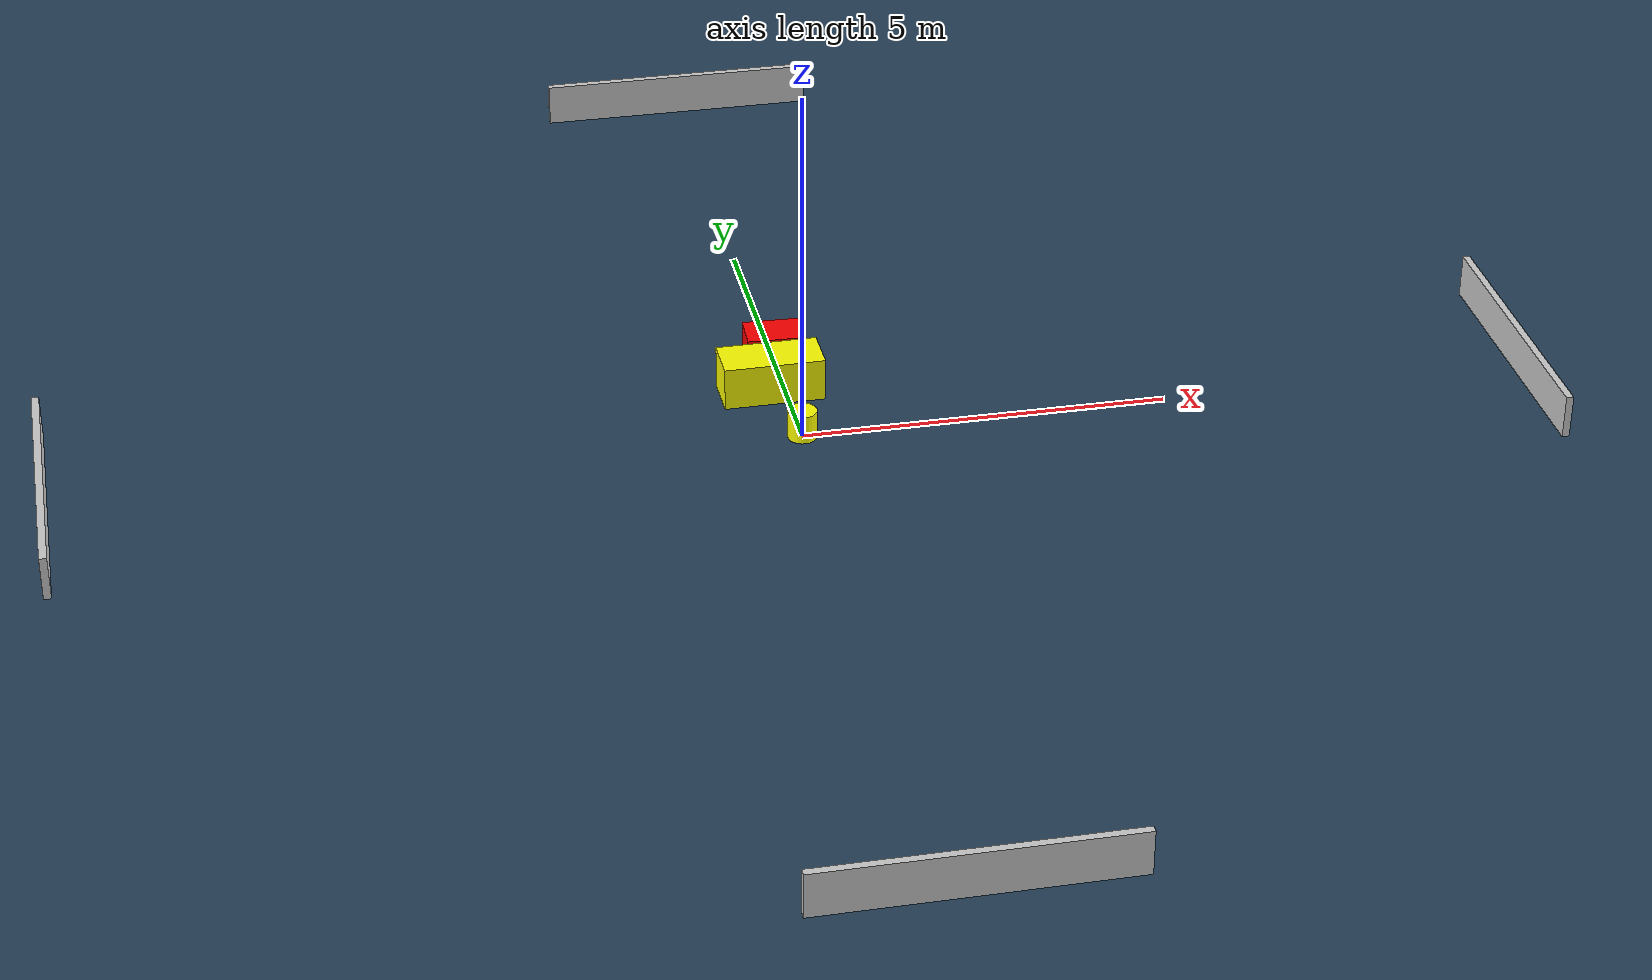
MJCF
<?xml version="1.0" ?>
<mujoco model="generated_environment">
  <option timestep="0.01" integrator="RK4" cone="elliptic"/>
  <default>
    <geom density="1"/>
  </default>
  <asset>
    <texture builtin="gradient" height="3072" name="skybox" rgb1="0.3 0.5 0.7" rgb2="0 0 0" type="skybox" width="512"/>
    <texture builtin="checker" height="300" name="groundplane" rgb1="0.2 0.3 0.4" rgb2="0.1 0.2 0.3" type="2d" width="300"/>
    <material name="groundplane" reflectance="0.2" texrepeat="5 5" texture="groundplane"/>
  </asset>
  <worldbody>
    <light dir="0 0 -1" directional="true" pos="0 0 1.5"/>
    <geom condim="3" friction="0.5 0.005 0.001" material="groundplane" name="floor" pos="0 0 0" size="0 0 0.05" type="plane"/>
    <body name="walls">
      <geom name="wall_1" condim="4" pos="-10.0 0.0 0.3" rgba="0.800000011920929 0.800000011920929 0.800000011920929 1.0" size="0.05 2.0 0.3" type="box"/>
      <geom name="wall_2" condim="4" pos="10.0 0.0 0.3" rgba="0.800000011920929 0.800000011920929 0.800000011920929 1.0" size="0.05 2.0 0.3" type="box"/>
      <geom name="wall_3" condim="4" pos="0.0 -10.0 0.3" rgba="0.800000011920929 0.800000011920929 0.800000011920929 1.0" size="2.0 0.05 0.3" type="box"/>
      <geom name="wall_4" condim="4" pos="0.0 10.0 0.3" rgba="0.800000011920929 0.800000011920929 0.800000011920929 1.0" size="2.0 0.05 0.3" type="box"/>
    </body>
    <body name="robot">
      <joint name="joint_x" type="slide" pos="0 0 0" axis="1 0 0"/>
      <joint name="joint_y" type="slide" pos="0 0 0" axis="0 1 0"/>
      <geom name="robot" type="cylinder" pos="0.0 0.0 0.2" size="0.2 0.2 0.0" mass="5.0" friction="1.0 0.005 0.0001" condim="4" rgba="1.0 1.0 0.0 1.0"/>
    </body>
    <body name="obstacle_1_movable">
      <geom name="obstacle_1_movable" condim="4" pos="-0.19763555085791332 1.2165269255236748 0.3" euler="0 0 0.4234585457913109" friction="0.0 0.005 0.001" rgba="1.0 1.0 0.0 1.0" size="0.6948304353017856 0.3223423670706025 0.3" type="box" mass="0.1"/>
      <joint type="free"/>
    </body>
    <body name="obstacle_2_static">
      <geom name="obstacle_2_static" condim="4" pos="-0.036022456525839554 1.8588281121744799 0.3" euler="0 0 87.73954424147199" friction="0.0 0.005 0.001" rgba="1.0 0.0 0.0 1.0" size="0.27314619763998704 0.3926095527244964 0.3" type="box"/>
    </body>
  </worldbody>
  <actuator>
    <motor name="actuator_x" joint="joint_x" gear="1" ctrlrange="-1 1"/>
    <motor name="actuator_y" joint="joint_y" gear="1" ctrlrange="-1 1"/>
  </actuator>
</mujoco>
